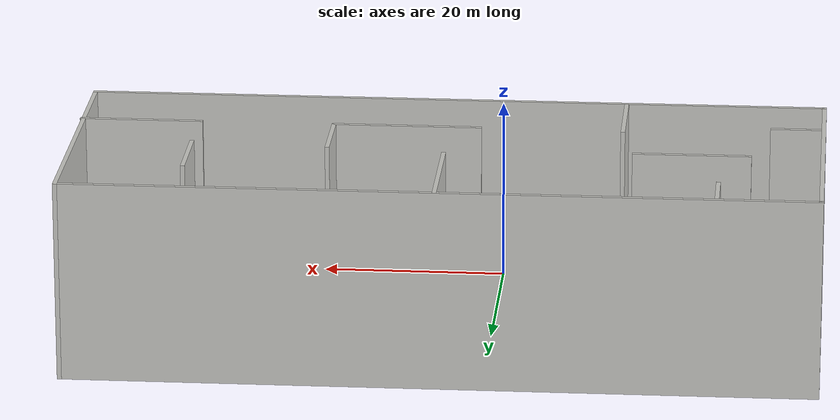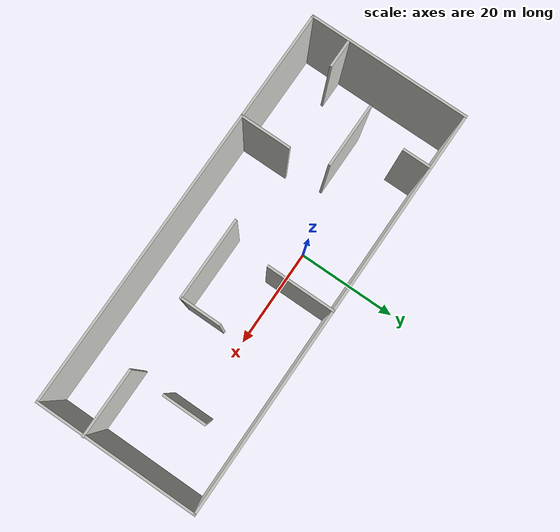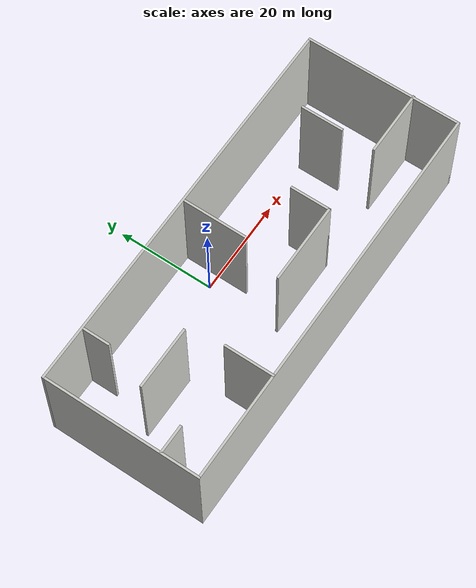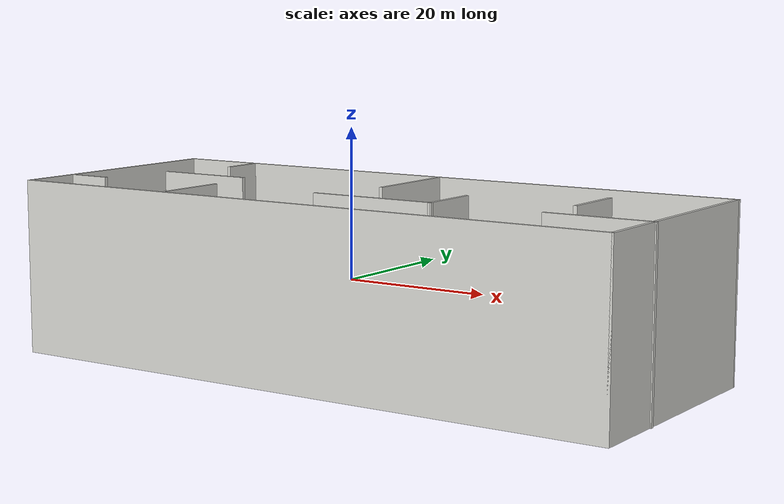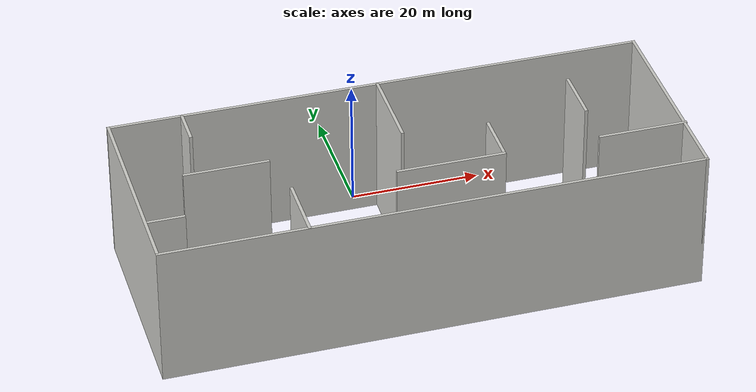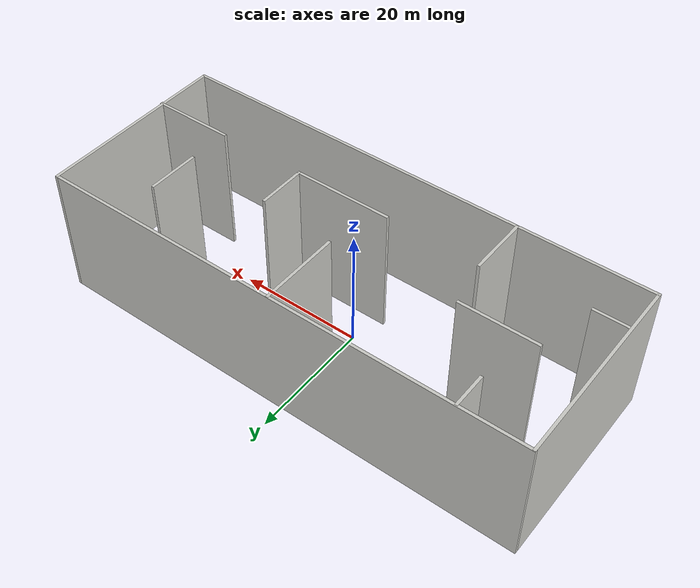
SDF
<?xml version='1.0'?>
<sdf version='1.6'>
  <model name='Untitled'>
    <pose frame=''>6.80705 -6.171 0 0 -0 0</pose>
    <link name='Wall_0'>
      <collision name='Wall_0_Collision'>
        <geometry>
          <box>
            <size>33.5996 0.5 23</size>
          </box>
        </geometry>
        <pose frame=''>0 0 1.5 0 -0 0</pose>
      </collision>
      <visual name='Wall_0_Visual'>
        <pose frame=''>0 0 1.5 0 -0 0</pose>
        <geometry>
          <box>
            <size>33.5996 0.5 23</size>
          </box>
        </geometry>
        <material>
          <script>
            <uri>file://media/materials/scripts/gazebo.material</uri>
            <name>Gazebo/CeilingTiled</name>
          </script>
          <ambient>1 1 1 1</ambient>
        </material>
        <meta>
          <layer>0</layer>
        </meta>
      </visual>
      <pose frame=''>-42.2571 -0 0 0 -0 -1.5708</pose>
    </link>
    <link name='Wall_1'>
      <collision name='Wall_1_Collision'>
        <geometry>
          <box>
            <size>84.85 0.5 23</size>
          </box>
        </geometry>
        <pose frame=''>0 0 1.5 0 -0 0</pose>
      </collision>
      <visual name='Wall_1_Visual'>
        <pose frame=''>0 0 1.5 0 -0 0</pose>
        <geometry>
          <box>
            <size>84.85 0.5 23</size>
          </box>
        </geometry>
        <material>
          <script>
            <uri>file://media/materials/scripts/gazebo.material</uri>
            <name>Gazebo/CeilingTiled</name>
          </script>
          <ambient>1 1 1 1</ambient>
        </material>
        <meta>
          <layer>0</layer>
        </meta>
      </visual>
      <pose frame=''>-0.082051 -16.55 0 0 -0 0</pose>
    </link>
    <link name='Wall_11'>
      <collision name='Wall_11_Collision'>
        <geometry>
          <box>
            <size>10.6002 0.5 23</size>
          </box>
        </geometry>
        <pose frame=''>0 0 1.5 0 -0 0</pose>
      </collision>
      <visual name='Wall_11_Visual'>
        <pose frame=''>0 0 1.5 0 -0 0</pose>
        <geometry>
          <box>
            <size>10.6002 0.5 23</size>
          </box>
        </geometry>
        <material>
          <script>
            <uri>file://media/materials/scripts/gazebo.material</uri>
            <name>Gazebo/CeilingTiled</name>
          </script>
          <ambient>1 1 1 1</ambient>
        </material>
        <meta>
          <layer>0</layer>
        </meta>
      </visual>
      <pose frame=''>-19.5401 -11.407 0 0 -0 1.5708</pose>
    </link>
    <link name='Wall_13'>
      <collision name='Wall_13_Collision'>
        <geometry>
          <box>
            <size>14.0995 0.5 23</size>
          </box>
        </geometry>
        <pose frame=''>0 0 1.5 0 -0 0</pose>
      </collision>
      <visual name='Wall_13_Visual'>
        <pose frame=''>0 0 1.5 0 -0 0</pose>
        <geometry>
          <box>
            <size>14.0995 0.5 23</size>
          </box>
        </geometry>
        <material>
          <script>
            <uri>file://media/materials/scripts/gazebo.material</uri>
            <name>Gazebo/CeilingTiled</name>
          </script>
          <ambient>1 1 1 1</ambient>
        </material>
        <meta>
          <layer>0</layer>
        </meta>
      </visual>
      <pose frame=''>0.160949 9.67 0 0 -0 -1.5708</pose>
    </link>
    <link name='Wall_15'>
      <collision name='Wall_15_Collision'>
        <geometry>
          <box>
            <size>17.1003 0.5 23</size>
          </box>
        </geometry>
        <pose frame=''>0 0 1.5 0 -0 0</pose>
      </collision>
      <visual name='Wall_15_Visual'>
        <pose frame=''>0 0 1.5 0 -0 0</pose>
        <geometry>
          <box>
            <size>17.1003 0.5 23</size>
          </box>
        </geometry>
        <material>
          <script>
            <uri>file://media/materials/scripts/gazebo.material</uri>
            <name>Gazebo/CeilingTiled</name>
          </script>
          <ambient>1 1 1 1</ambient>
        </material>
        <meta>
          <layer>0</layer>
        </meta>
      </visual>
      <pose frame=''>5.08295 -6.607 0 0 -0 0</pose>
    </link>
    <link name='Wall_17'>
      <collision name='Wall_17_Collision'>
        <geometry>
          <box>
            <size>8.6 0.5 23</size>
          </box>
        </geometry>
        <pose frame=''>0 0 1.5 0 -0 0</pose>
      </collision>
      <visual name='Wall_17_Visual'>
        <pose frame=''>0 0 1.5 0 -0 0</pose>
        <geometry>
          <box>
            <size>8.6 0.5 23</size>
          </box>
        </geometry>
        <material>
          <script>
            <uri>file://media/materials/scripts/gazebo.material</uri>
            <name>Gazebo/CeilingTiled</name>
          </script>
          <ambient>1 1 1 1</ambient>
        </material>
        <meta>
          <layer>0</layer>
        </meta>
      </visual>
      <pose frame=''>13.3829 -2.557 0 0 -0 1.5708</pose>
    </link>
    <link name='Wall_19'>
      <collision name='Wall_19_Collision'>
        <geometry>
          <box>
            <size>9.09977 0.5 23</size>
          </box>
        </geometry>
        <pose frame=''>0 0 1.5 0 -0 0</pose>
      </collision>
      <visual name='Wall_19_Visual'>
        <pose frame=''>0 0 1.5 0 -0 0</pose>
        <geometry>
          <box>
            <size>9.09977 0.5 23</size>
          </box>
        </geometry>
        <material>
          <script>
            <uri>file://media/materials/scripts/gazebo.material</uri>
            <name>Gazebo/CeilingTiled</name>
          </script>
          <ambient>1 1 1 1</ambient>
        </material>
        <meta>
          <layer>0</layer>
        </meta>
      </visual>
      <pose frame=''>28.7979 5.003 0 0 -0 -1.5708</pose>
    </link>
    <link name='Wall_2'>
      <collision name='Wall_2_Collision'>
        <geometry>
          <box>
            <size>33.6 0.5 23</size>
          </box>
        </geometry>
        <pose frame=''>0 0 1.5 0 -0 0</pose>
      </collision>
      <visual name='Wall_2_Visual'>
        <pose frame=''>0 0 1.5 0 -0 0</pose>
        <geometry>
          <box>
            <size>33.6 0.5 23</size>
          </box>
        </geometry>
        <material>
          <script>
            <uri>file://media/materials/scripts/gazebo.material</uri>
            <name>Gazebo/CeilingTiled</name>
          </script>
          <ambient>1 1 1 1</ambient>
        </material>
        <meta>
          <layer>0</layer>
        </meta>
      </visual>
      <pose frame=''>42.093 -0 0 0 -0 1.5708</pose>
    </link>
    <link name='Wall_21'>
      <collision name='Wall_21_Collision'>
        <geometry>
          <box>
            <size>14.1002 0.5 23</size>
          </box>
        </geometry>
        <pose frame=''>0 0 1.5 0 -0 0</pose>
      </collision>
      <visual name='Wall_21_Visual'>
        <pose frame=''>0 0 1.5 0 -0 0</pose>
        <geometry>
          <box>
            <size>14.1002 0.5 23</size>
          </box>
        </geometry>
        <material>
          <script>
            <uri>file://media/materials/scripts/gazebo.material</uri>
            <name>Gazebo/CeilingTiled</name>
          </script>
          <ambient>1 1 1 1</ambient>
        </material>
        <meta>
          <layer>0</layer>
        </meta>
      </visual>
      <pose frame=''>35.4569 -6.598 0 0 -0 0</pose>
    </link>
    <link name='Wall_3'>
      <collision name='Wall_3_Collision'>
        <geometry>
          <box>
            <size>84.85 0.5 23</size>
          </box>
        </geometry>
        <pose frame=''>0 0 1.5 0 -0 0</pose>
      </collision>
      <visual name='Wall_3_Visual'>
        <pose frame=''>0 0 1.5 0 -0 0</pose>
        <geometry>
          <box>
            <size>84.85 0.5 23</size>
          </box>
        </geometry>
        <material>
          <script>
            <uri>file://media/materials/scripts/gazebo.material</uri>
            <name>Gazebo/CeilingTiled</name>
          </script>
          <ambient>1 1 1 1</ambient>
        </material>
        <meta>
          <layer>0</layer>
        </meta>
      </visual>
      <pose frame=''>-0.082051 16.55 0 0 -0 3.14159</pose>
    </link>
    <link name='Wall_5'>
      <collision name='Wall_5_Collision'>
        <geometry>
          <box>
            <size>6.10023 0.5 23</size>
          </box>
        </geometry>
        <pose frame=''>0 0 1.5 0 -0 0</pose>
      </collision>
      <visual name='Wall_5_Visual'>
        <pose frame=''>0 0 1.5 0 -0 0</pose>
        <geometry>
          <box>
            <size>6.10023 0.5 23</size>
          </box>
        </geometry>
        <material>
          <script>
            <uri>file://media/materials/scripts/gazebo.material</uri>
            <name>Gazebo/CeilingTiled</name>
          </script>
          <ambient>1 1 1 1</ambient>
        </material>
        <meta>
          <layer>0</layer>
        </meta>
      </visual>
      <pose frame=''>-30.8361 13.649 0 0 -0 -1.5708</pose>
    </link>
    <link name='Wall_7'>
      <collision name='Wall_7_Collision'>
        <geometry>
          <box>
            <size>13.3497 0.5 23</size>
          </box>
        </geometry>
        <pose frame=''>0 0 1.5 0 -0 0</pose>
      </collision>
      <visual name='Wall_7_Visual'>
        <pose frame=''>0 0 1.5 0 -0 0</pose>
        <geometry>
          <box>
            <size>13.3497 0.5 23</size>
          </box>
        </geometry>
        <material>
          <script>
            <uri>file://media/materials/scripts/gazebo.material</uri>
            <name>Gazebo/CeilingTiled</name>
          </script>
          <ambient>1 1 1 1</ambient>
        </material>
        <meta>
          <layer>0</layer>
        </meta>
      </visual>
      <pose frame=''>-27.6081 1.414 0 0 -0 0</pose>
    </link>
    <link name='Wall_9'>
      <collision name='Wall_9_Collision'>
        <geometry>
          <box>
            <size>6.09999 0.5 23</size>
          </box>
        </geometry>
        <pose frame=''>0 0 1.5 0 -0 0</pose>
      </collision>
      <visual name='Wall_9_Visual'>
        <pose frame=''>0 0 1.5 0 -0 0</pose>
        <geometry>
          <box>
            <size>6.09999 0.5 23</size>
          </box>
        </geometry>
        <material>
          <script>
            <uri>file://media/materials/scripts/gazebo.material</uri>
            <name>Gazebo/CeilingTiled</name>
          </script>
          <ambient>1 1 1 1</ambient>
        </material>
        <meta>
          <layer>0</layer>
        </meta>
      </visual>
      <pose frame=''>-39.254 -8.577 0 0 -0 0</pose>
    </link>
    <static>1</static>
  </model>
</sdf>
